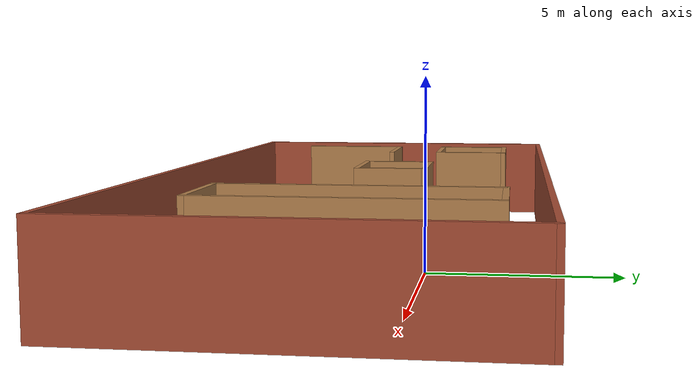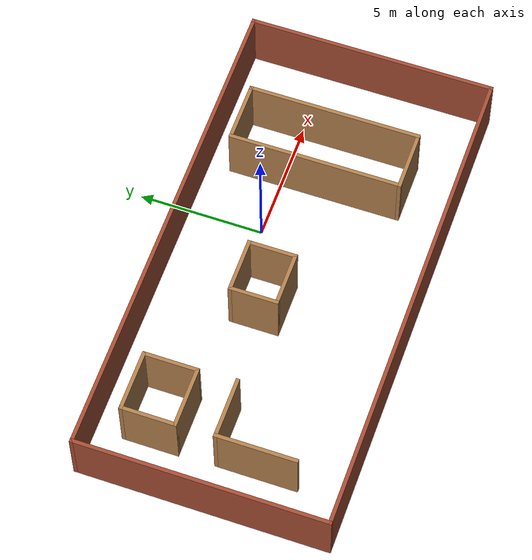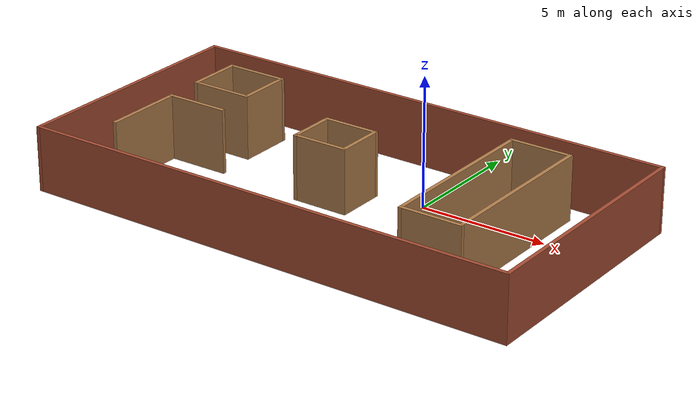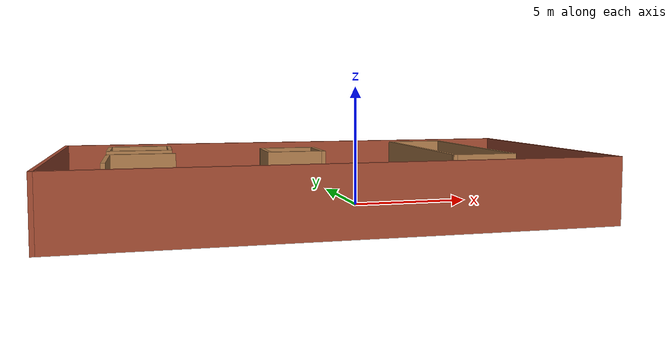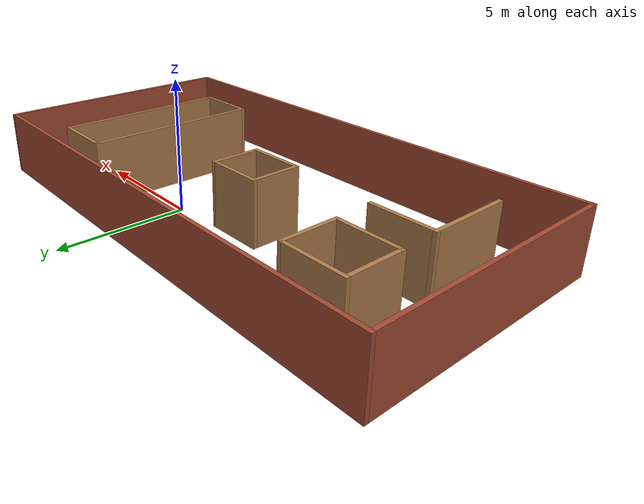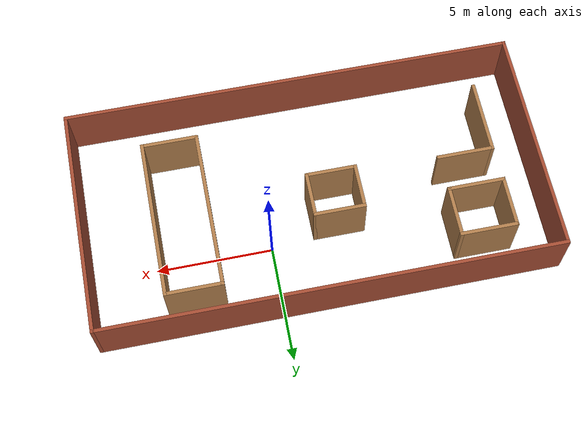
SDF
<?xml version='1.0'?>
<sdf version='1.6'>
  <model name='simple_room'>
    <pose frame=''>-2.06 -1.875 0 0 -0 0</pose>
    <link name='Wall_0'>
      <collision name='Wall_0_Collision'>
        <geometry>
          <box>
            <size>19.75 0.15 2.5</size>
          </box>
        </geometry>
        <pose frame=''>0 0 1.25 0 -0 0</pose>
      </collision>
      <visual name='Wall_0_Visual'>
        <pose frame=''>0 0 1.25 0 -0 0</pose>
        <geometry>
          <box>
            <size>19.75 0.15 2.5</size>
          </box>
        </geometry>
        <material>
          <script>
            <uri>file://media/materials/scripts/gazebo.material</uri>
            <name>Gazebo/Bricks</name>
          </script>
          <ambient>1 1 1 1</ambient>
        </material>
        <meta>
          <layer>0</layer>
        </meta>
      </visual>
      <pose frame=''>0 -4.925 0 0 -0 3.14159</pose>
    </link>
    <link name='Wall_10'>
      <collision name='Wall_10_Collision'>
        <geometry>
          <box>
            <size>2.5 0.15 2.5</size>
          </box>
        </geometry>
        <pose frame=''>0 0 1.25 0 -0 0</pose>
      </collision>
      <visual name='Wall_10_Visual'>
        <pose frame=''>0 0 1.25 0 -0 0</pose>
        <geometry>
          <box>
            <size>2.5 0.15 2.5</size>
          </box>
        </geometry>
        <material>
          <script>
            <uri>file://media/materials/scripts/gazebo.material</uri>
            <name>Gazebo/Wood</name>
          </script>
          <ambient>1 1 1 1</ambient>
        </material>
        <meta>
          <layer>0</layer>
        </meta>
      </visual>
      <pose frame=''>-6.79105 3.72719 0 0 -0 3.14159</pose>
    </link>
    <link name='Wall_12'>
      <collision name='Wall_12_Collision'>
        <geometry>
          <box>
            <size>3.25 0.15 2.5</size>
          </box>
        </geometry>
        <pose frame=''>0 0 1.25 0 -0 0</pose>
      </collision>
      <visual name='Wall_12_Visual'>
        <pose frame=''>0 0 1.25 0 -0 0</pose>
        <geometry>
          <box>
            <size>3.25 0.15 2.5</size>
          </box>
        </geometry>
        <material>
          <script>
            <uri>file://media/materials/scripts/gazebo.material</uri>
            <name>Gazebo/Wood</name>
          </script>
          <ambient>1 1 1 1</ambient>
        </material>
        <meta>
          <layer>0</layer>
        </meta>
      </visual>
      <pose frame=''>-7.89666 -1.45431 0 0 0 -1.5708</pose>
    </link>
    <link name='Wall_14'>
      <collision name='Wall_14_Collision'>
        <geometry>
          <box>
            <size>2.5 0.15 2.5</size>
          </box>
        </geometry>
        <pose frame=''>0 0 1.25 0 -0 0</pose>
      </collision>
      <visual name='Wall_14_Visual'>
        <pose frame=''>0 0 1.25 0 -0 0</pose>
        <geometry>
          <box>
            <size>2.5 0.15 2.5</size>
          </box>
        </geometry>
        <material>
          <script>
            <uri>file://media/materials/scripts/gazebo.material</uri>
            <name>Gazebo/Wood</name>
          </script>
          <ambient>1 1 1 1</ambient>
        </material>
        <meta>
          <layer>0</layer>
        </meta>
      </visual>
      <pose frame=''>-6.72166 0.095687 0 0 -0 0</pose>
    </link>
    <link name='Wall_16'>
      <collision name='Wall_16_Collision'>
        <geometry>
          <box>
            <size>7 0.15 2.5</size>
          </box>
        </geometry>
        <pose frame=''>0 0 1.25 0 -0 0</pose>
      </collision>
      <visual name='Wall_16_Visual'>
        <pose frame=''>0 0 1.25 0 -0 0</pose>
        <geometry>
          <box>
            <size>7 0.15 2.5</size>
          </box>
        </geometry>
        <material>
          <script>
            <uri>file://media/materials/scripts/gazebo.material</uri>
            <name>Gazebo/Wood</name>
          </script>
          <ambient>1 1 1 1</ambient>
        </material>
        <meta>
          <layer>0</layer>
        </meta>
      </visual>
      <pose frame=''>6.74502 0.510368 0 0 0 -1.5708</pose>
    </link>
    <link name='Wall_17'>
      <collision name='Wall_17_Collision'>
        <geometry>
          <box>
            <size>2.5 0.15 2.5</size>
          </box>
        </geometry>
        <pose frame=''>0 0 1.25 0 -0 0</pose>
      </collision>
      <visual name='Wall_17_Visual'>
        <pose frame=''>0 0 1.25 0 -0 0</pose>
        <geometry>
          <box>
            <size>2.5 0.15 2.5</size>
          </box>
        </geometry>
        <material>
          <script>
            <uri>file://media/materials/scripts/gazebo.material</uri>
            <name>Gazebo/Wood</name>
          </script>
          <ambient>1 1 1 1</ambient>
        </material>
        <meta>
          <layer>0</layer>
        </meta>
      </visual>
      <pose frame=''>5.57002 -2.91463 0 0 -0 3.14159</pose>
    </link>
    <link name='Wall_18'>
      <collision name='Wall_18_Collision'>
        <geometry>
          <box>
            <size>7 0.15 2.5</size>
          </box>
        </geometry>
        <pose frame=''>0 0 1.25 0 -0 0</pose>
      </collision>
      <visual name='Wall_18_Visual'>
        <pose frame=''>0 0 1.25 0 -0 0</pose>
        <geometry>
          <box>
            <size>7 0.15 2.5</size>
          </box>
        </geometry>
        <material>
          <script>
            <uri>file://media/materials/scripts/gazebo.material</uri>
            <name>Gazebo/Wood</name>
          </script>
          <ambient>1 1 1 1</ambient>
        </material>
        <meta>
          <layer>0</layer>
        </meta>
      </visual>
      <pose frame=''>4.39502 0.510368 0 0 -0 1.5708</pose>
    </link>
    <link name='Wall_19'>
      <collision name='Wall_19_Collision'>
        <geometry>
          <box>
            <size>2.5 0.15 2.5</size>
          </box>
        </geometry>
        <pose frame=''>0 0 1.25 0 -0 0</pose>
      </collision>
      <visual name='Wall_19_Visual'>
        <pose frame=''>0 0 1.25 0 -0 0</pose>
        <geometry>
          <box>
            <size>2.5 0.15 2.5</size>
          </box>
        </geometry>
        <material>
          <script>
            <uri>file://media/materials/scripts/gazebo.material</uri>
            <name>Gazebo/Wood</name>
          </script>
          <ambient>1 1 1 1</ambient>
        </material>
        <meta>
          <layer>0</layer>
        </meta>
      </visual>
      <pose frame=''>5.57002 3.93537 0 0 -0 0</pose>
    </link>
    <link name='Wall_21'>
      <collision name='Wall_21_Collision'>
        <geometry>
          <box>
            <size>2 0.15 2.5</size>
          </box>
        </geometry>
        <pose frame=''>0 0 1.25 0 -0 0</pose>
      </collision>
      <visual name='Wall_21_Visual'>
        <pose frame=''>0 0 1.25 0 -0 0</pose>
        <geometry>
          <box>
            <size>2 0.15 2.5</size>
          </box>
        </geometry>
        <material>
          <script>
            <uri>file://media/materials/scripts/gazebo.material</uri>
            <name>Gazebo/Wood</name>
          </script>
          <ambient>1 1 1 1</ambient>
        </material>
        <meta>
          <layer>0</layer>
        </meta>
      </visual>
      <pose frame=''>-1.97522 0.743568 0 0 0 -1.5708</pose>
    </link>
    <link name='Wall_22'>
      <collision name='Wall_22_Collision'>
        <geometry>
          <box>
            <size>2.25 0.15 2.5</size>
          </box>
        </geometry>
        <pose frame=''>0 0 1.25 0 -0 0</pose>
      </collision>
      <visual name='Wall_22_Visual'>
        <pose frame=''>0 0 1.25 0 -0 0</pose>
        <geometry>
          <box>
            <size>2.25 0.15 2.5</size>
          </box>
        </geometry>
        <material>
          <script>
            <uri>file://media/materials/scripts/gazebo.material</uri>
            <name>Gazebo/Wood</name>
          </script>
          <ambient>1 1 1 1</ambient>
        </material>
        <meta>
          <layer>0</layer>
        </meta>
      </visual>
      <pose frame=''>-0.925222 -0.181432 0 0 -0 0</pose>
    </link>
    <link name='Wall_23'>
      <collision name='Wall_23_Collision'>
        <geometry>
          <box>
            <size>2 0.15 2.5</size>
          </box>
        </geometry>
        <pose frame=''>0 0 1.25 0 -0 0</pose>
      </collision>
      <visual name='Wall_23_Visual'>
        <pose frame=''>0 0 1.25 0 -0 0</pose>
        <geometry>
          <box>
            <size>2 0.15 2.5</size>
          </box>
        </geometry>
        <material>
          <script>
            <uri>file://media/materials/scripts/gazebo.material</uri>
            <name>Gazebo/Wood</name>
          </script>
          <ambient>1 1 1 1</ambient>
        </material>
        <meta>
          <layer>0</layer>
        </meta>
      </visual>
      <pose frame=''>0.124778 0.743568 0 0 -0 1.5708</pose>
    </link>
    <link name='Wall_24'>
      <collision name='Wall_24_Collision'>
        <geometry>
          <box>
            <size>2.25 0.15 2.5</size>
          </box>
        </geometry>
        <pose frame=''>0 0 1.25 0 -0 0</pose>
      </collision>
      <visual name='Wall_24_Visual'>
        <pose frame=''>0 0 1.25 0 -0 0</pose>
        <geometry>
          <box>
            <size>2.25 0.15 2.5</size>
          </box>
        </geometry>
        <material>
          <script>
            <uri>file://media/materials/scripts/gazebo.material</uri>
            <name>Gazebo/Wood</name>
          </script>
          <ambient>1 1 1 1</ambient>
        </material>
        <meta>
          <layer>0</layer>
        </meta>
      </visual>
      <pose frame=''>-0.925222 1.66857 0 0 -0 3.14159</pose>
    </link>
    <link name='Wall_3'>
      <collision name='Wall_3_Collision'>
        <geometry>
          <box>
            <size>10 0.15 2.5</size>
          </box>
        </geometry>
        <pose frame=''>0 0 1.25 0 -0 0</pose>
      </collision>
      <visual name='Wall_3_Visual'>
        <pose frame=''>0 0 1.25 0 -0 0</pose>
        <geometry>
          <box>
            <size>10 0.15 2.5</size>
          </box>
        </geometry>
        <material>
          <script>
            <uri>file://media/materials/scripts/gazebo.material</uri>
            <name>Gazebo/Bricks</name>
          </script>
          <ambient>1 1 1 1</ambient>
        </material>
        <meta>
          <layer>0</layer>
        </meta>
      </visual>
      <pose frame=''>9.8 0 0 0 -0 1.5708</pose>
    </link>
    <link name='Wall_4'>
      <collision name='Wall_4_Collision'>
        <geometry>
          <box>
            <size>19.75 0.15 2.5</size>
          </box>
        </geometry>
        <pose frame=''>0 0 1.25 0 -0 0</pose>
      </collision>
      <visual name='Wall_4_Visual'>
        <pose frame=''>0 0 1.25 0 -0 0</pose>
        <geometry>
          <box>
            <size>19.75 0.15 2.5</size>
          </box>
        </geometry>
        <material>
          <script>
            <uri>file://media/materials/scripts/gazebo.material</uri>
            <name>Gazebo/Bricks</name>
          </script>
          <ambient>1 1 1 1</ambient>
        </material>
        <meta>
          <layer>0</layer>
        </meta>
      </visual>
      <pose frame=''>0 4.925 0 0 -0 3.14159</pose>
    </link>
    <link name='Wall_5'>
      <collision name='Wall_5_Collision'>
        <geometry>
          <box>
            <size>10 0.15 2.5</size>
          </box>
        </geometry>
        <pose frame=''>0 0 1.25 0 -0 0</pose>
      </collision>
      <visual name='Wall_5_Visual'>
        <pose frame=''>0 0 1.25 0 -0 0</pose>
        <geometry>
          <box>
            <size>10 0.15 2.5</size>
          </box>
        </geometry>
        <material>
          <script>
            <uri>file://media/materials/scripts/gazebo.material</uri>
            <name>Gazebo/Bricks</name>
          </script>
          <ambient>1 1 1 1</ambient>
        </material>
        <meta>
          <layer>0</layer>
        </meta>
      </visual>
      <pose frame=''>-9.8 0 0 0 0 -1.5708</pose>
    </link>
    <link name='Wall_7'>
      <collision name='Wall_7_Collision'>
        <geometry>
          <box>
            <size>2.25 0.15 2.5</size>
          </box>
        </geometry>
        <pose frame=''>0 0 1.25 0 -0 0</pose>
      </collision>
      <visual name='Wall_7_Visual'>
        <pose frame=''>0 0 1.25 0 -0 0</pose>
        <geometry>
          <box>
            <size>2.25 0.15 2.5</size>
          </box>
        </geometry>
        <material>
          <script>
            <uri>file://media/materials/scripts/gazebo.material</uri>
            <name>Gazebo/Wood</name>
          </script>
          <ambient>1 1 1 1</ambient>
        </material>
        <meta>
          <layer>0</layer>
        </meta>
      </visual>
      <pose frame=''>-7.96605 2.67719 0 0 0 -1.5708</pose>
    </link>
    <link name='Wall_8'>
      <collision name='Wall_8_Collision'>
        <geometry>
          <box>
            <size>2.5 0.15 2.5</size>
          </box>
        </geometry>
        <pose frame=''>0 0 1.25 0 -0 0</pose>
      </collision>
      <visual name='Wall_8_Visual'>
        <pose frame=''>0 0 1.25 0 -0 0</pose>
        <geometry>
          <box>
            <size>2.5 0.15 2.5</size>
          </box>
        </geometry>
        <material>
          <script>
            <uri>file://media/materials/scripts/gazebo.material</uri>
            <name>Gazebo/Wood</name>
          </script>
          <ambient>1 1 1 1</ambient>
        </material>
        <meta>
          <layer>0</layer>
        </meta>
      </visual>
      <pose frame=''>-6.79105 1.62719 0 0 -0 0</pose>
    </link>
    <link name='Wall_9'>
      <collision name='Wall_9_Collision'>
        <geometry>
          <box>
            <size>2.25 0.15 2.5</size>
          </box>
        </geometry>
        <pose frame=''>0 0 1.25 0 -0 0</pose>
      </collision>
      <visual name='Wall_9_Visual'>
        <pose frame=''>0 0 1.25 0 -0 0</pose>
        <geometry>
          <box>
            <size>2.25 0.15 2.5</size>
          </box>
        </geometry>
        <material>
          <script>
            <uri>file://media/materials/scripts/gazebo.material</uri>
            <name>Gazebo/Wood</name>
          </script>
          <ambient>1 1 1 1</ambient>
        </material>
        <meta>
          <layer>0</layer>
        </meta>
      </visual>
      <pose frame=''>-5.61605 2.67719 0 0 -0 1.5708</pose>
    </link>
    <static>1</static>
  </model>
</sdf>
